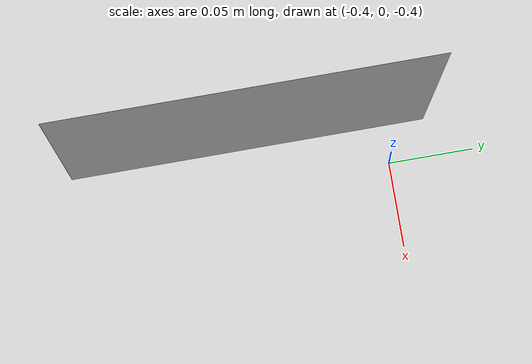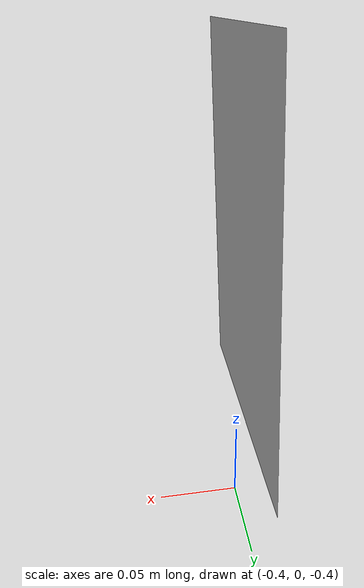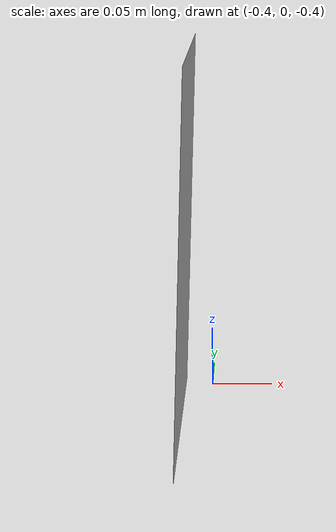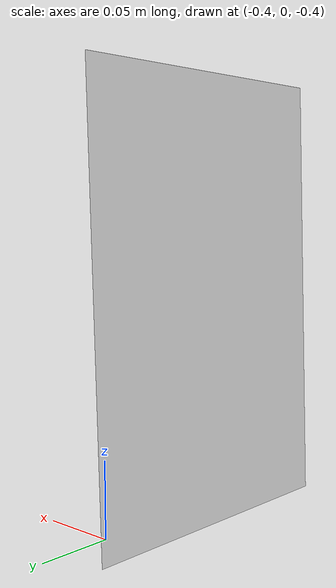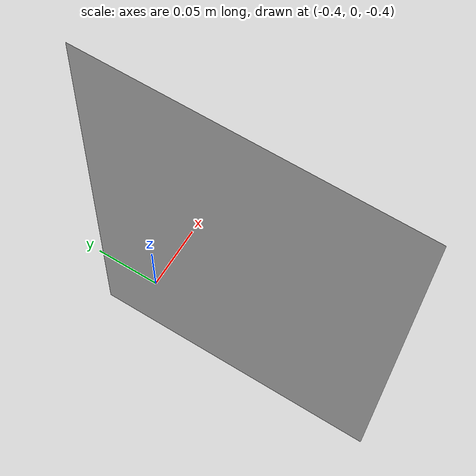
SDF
<?xml version='1.0'?>
<sdf version='1.6'>
  <model name='BIN_STATION_v1'>
    <link name='stand'>
      <collision name="collision">
        <geometry>
          <mesh>
            <uri>model://BinHanger/meshes/tag.dae</uri>
          </mesh>
        </geometry>
      </collision>
      <visual name="visual">
        <geometry>
          <mesh>
            <uri>model://BinHanger/meshes/tag.dae</uri>
          </mesh>
        </geometry>
        <material>
          <script>
            <uri>model://BinHanger/materials/scripts</uri>
            <uri>model://BinHanger/materials/textures</uri>
            <name>BIN_STATION_v1</name>
          </script>
        </material>
      </visual>
    </link>
    <static>1</static>
  </model>
</sdf>
